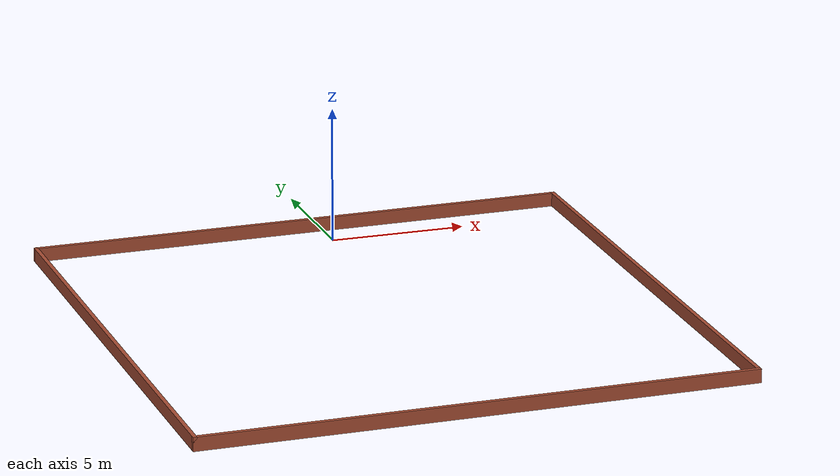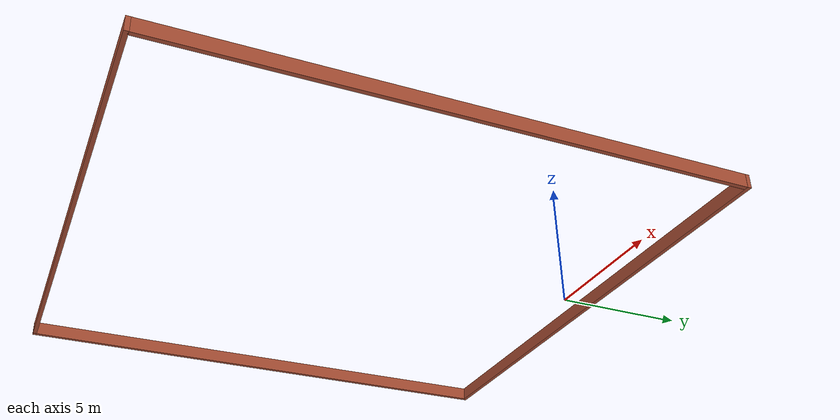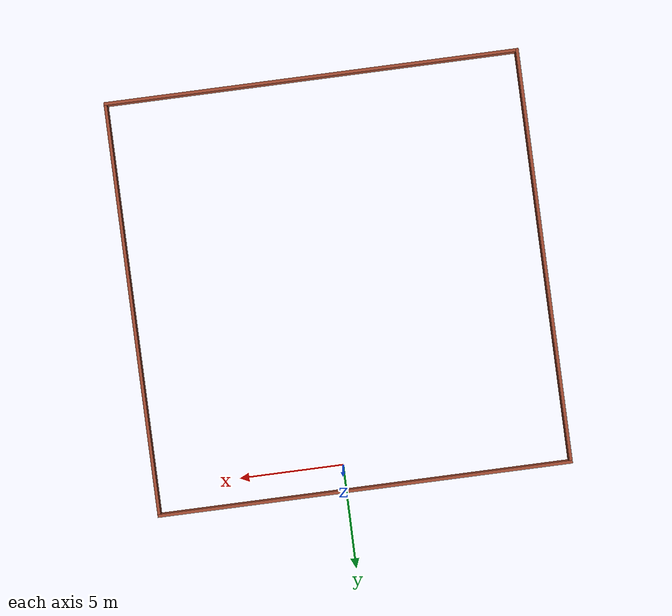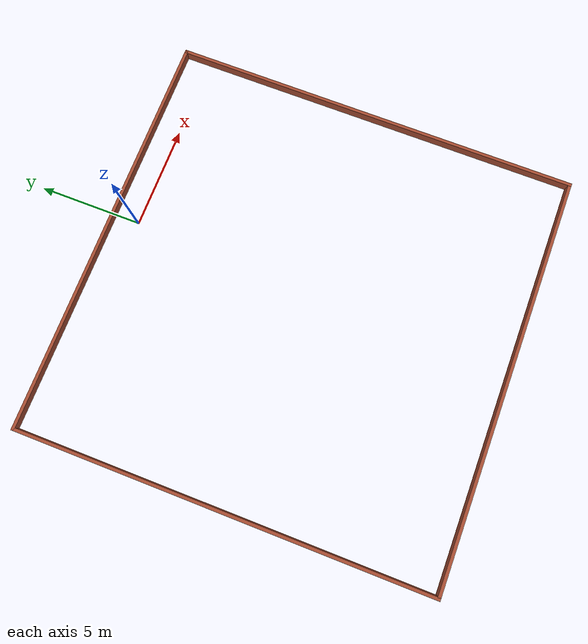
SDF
<?xml version='1.0'?>
<sdf version='1.6'>
  <model name='border'>
    <pose frame=''>-0.913117 -8.70895 0 0 -0 0</pose>
    <link name='Wall_0'>
      <collision name='Wall_0_Collision'>
        <geometry>
          <box>
            <size>20 0.15 0.5</size>
          </box>
        </geometry>
        <pose frame=''>0 0 0.25 0 -0 0</pose>
      </collision>
      <visual name='Wall_0_Visual'>
        <pose frame=''>0 0 0.25 0 -0 0</pose>
        <geometry>
          <box>
            <size>20 0.15 0.5</size>
          </box>
        </geometry>
        <material>
          <script>
            <uri>file://media/materials/scripts/gazebo.material</uri>
            <name>Gazebo/Bricks</name>
          </script>
          <ambient>0.996078 0.47451 0.0196078 1</ambient>
        </material>
        <meta>
          <layer>0</layer>
        </meta>
      </visual>
      <pose frame=''>0 9.925 0 0 -0 5e-06</pose>
    </link>
    <link name='Wall_2'>
      <collision name='Wall_2_Collision'>
        <geometry>
          <box>
            <size>20 0.15 0.5</size>
          </box>
        </geometry>
        <pose frame=''>0 0 0.25 0 -0 0</pose>
      </collision>
      <visual name='Wall_2_Visual'>
        <pose frame=''>0 0 0.25 0 -0 0</pose>
        <geometry>
          <box>
            <size>20 0.15 0.5</size>
          </box>
        </geometry>
        <material>
          <script>
            <uri>file://media/materials/scripts/gazebo.material</uri>
            <name>Gazebo/Bricks</name>
          </script>
          <ambient>0.996078 0.47451 0.0196078 1</ambient>
        </material>
        <meta>
          <layer>0</layer>
        </meta>
      </visual>
      <pose frame=''>-9.92488 -5.1e-05 0 0 0 -1.5708</pose>
    </link>
    <link name='Wall_3'>
      <collision name='Wall_3_Collision'>
        <geometry>
          <box>
            <size>20 0.15 0.5</size>
          </box>
        </geometry>
        <pose frame=''>0 0 0.25 0 -0 0</pose>
      </collision>
      <visual name='Wall_3_Visual'>
        <pose frame=''>0 0 0.25 0 -0 0</pose>
        <geometry>
          <box>
            <size>20 0.15 0.5</size>
          </box>
        </geometry>
        <material>
          <script>
            <uri>file://media/materials/scripts/gazebo.material</uri>
            <name>Gazebo/Bricks</name>
          </script>
          <ambient>0.996078 0.47451 0.0196078 1</ambient>
        </material>
        <meta>
          <layer>0</layer>
        </meta>
      </visual>
      <pose frame=''>0 -9.925 0 0 -0 5e-06</pose>
    </link>
    <link name='Wall_5'>
      <collision name='Wall_5_Collision'>
        <geometry>
          <box>
            <size>20 0.15 0.5</size>
          </box>
        </geometry>
        <pose frame=''>0 0 0.25 0 -0 0</pose>
      </collision>
      <visual name='Wall_5_Visual'>
        <pose frame=''>0 0 0.25 0 -0 0</pose>
        <geometry>
          <box>
            <size>20 0.15 0.5</size>
          </box>
        </geometry>
        <material>
          <script>
            <uri>file://media/materials/scripts/gazebo.material</uri>
            <name>Gazebo/Bricks</name>
          </script>
          <ambient>0.996078 0.47451 0.0196078 1</ambient>
        </material>
        <meta>
          <layer>0</layer>
        </meta>
      </visual>
      <pose frame=''>9.92488 5e-05 0 0 0 -1.5708</pose>
    </link>
    <static>1</static>
  </model>
</sdf>
